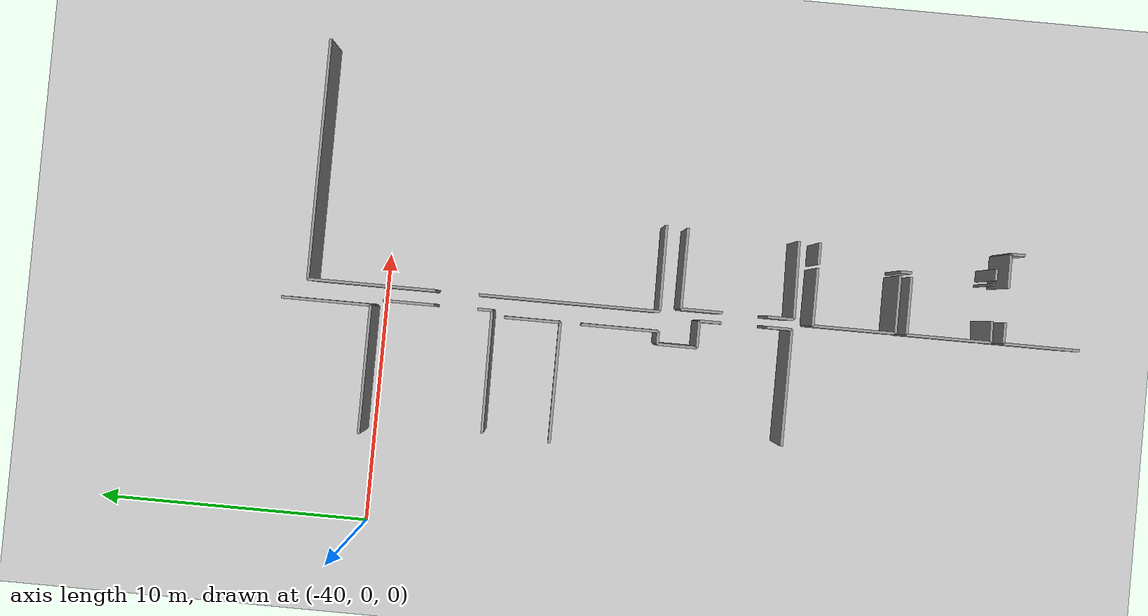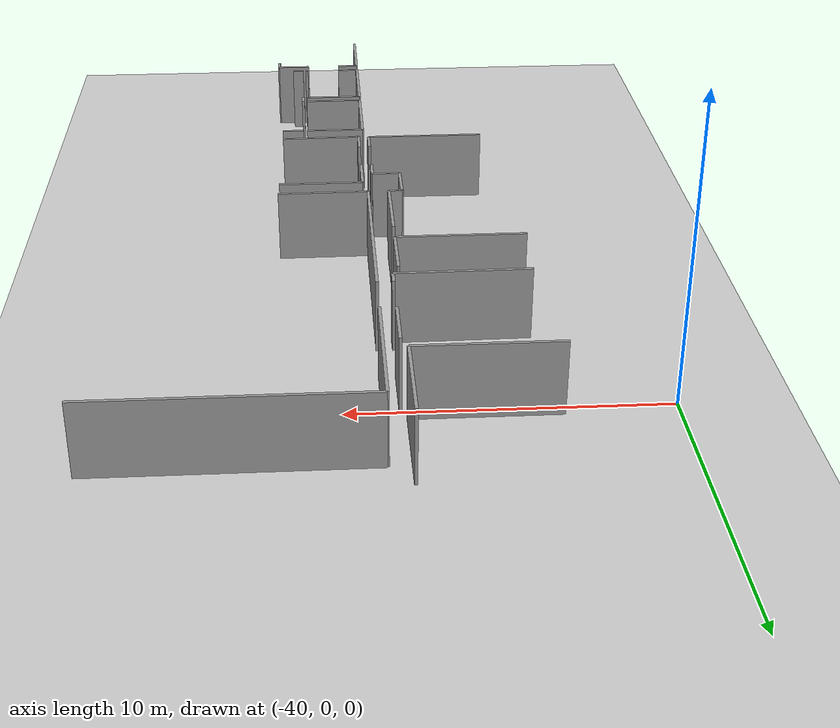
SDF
<sdf version="1.6">
 <world name="default">
  <model name="ground_plane">
   <static>1</static>
   <link name="link">
    <collision name="collision">
     <geometry><plane><normal>0 0 1</normal><size>100 100</size></plane></geometry>
     <surface><friction><ode><mu>100</mu><mu2>50</mu2></ode></friction></surface>
    </collision>
    <visual name="visual">
     <cast_shadows>0</cast_shadows>
     <geometry><plane><normal>0 0 1</normal><size>100 100</size></plane></geometry>
     <material>
      <script><uri>file://media/materials/scripts/gazebo.material</uri><name>Gazebo/Grey</name></script>
     </material>
    </visual>
   </link>
  </model>
  <model name="0510035342_A_40_1_101">
   <static>1</static>
   <link name="Wall_21">
    <collision name="Wall_21_Collision">
     <geometry><box><size>2.7773544651 0.1 2.5</size></box></geometry>
     <pose>1.38867723255 0 1.25 0 0 0</pose>
    </collision>
    <visual name="Wall_21_Visual">
     <pose>1.38867723255 0 1.25 0 0 0</pose>
     <geometry><box><size>2.7773544651 0.1 2.5</size></box></geometry>
     <material>
      <script><uri>file://media/materials/scripts/gazebo.material</uri><name>Gazebo/Grey</name></script>
      <ambient>1 1 1 1</ambient>
     </material>
    </visual>
    <pose>83.7661282129 -32.6178502489 0 0 0 -1.57079632679</pose>
   </link>
   <link name="Wall_22">
    <collision name="Wall_22_Collision">
     <geometry><box><size>0.454637813675 0.1 2.5</size></box></geometry>
     <pose>0.227318906837 0 1.25 0 0 0</pose>
    </collision>
    <visual name="Wall_22_Visual">
     <pose>0.227318906837 0 1.25 0 0 0</pose>
     <geometry><box><size>0.454637813675 0.1 2.5</size></box></geometry>
     <material>
      <script><uri>file://media/materials/scripts/gazebo.material</uri><name>Gazebo/Grey</name></script>
      <ambient>1 1 1 1</ambient>
     </material>
    </visual>
    <pose>83.7661282129 -35.395204714 0 0 0 3.14159265359</pose>
   </link>
   <link name="Wall_23">
    <collision name="Wall_23_Collision">
     <geometry><box><size>1.43401402012 0.1 2.5</size></box></geometry>
     <pose>0.717007010058 0 1.25 0 0 0</pose>
    </collision>
    <visual name="Wall_23_Visual">
     <pose>0.717007010058 0 1.25 0 0 0</pose>
     <geometry><box><size>1.43401402012 0.1 2.5</size></box></geometry>
     <material>
      <script><uri>file://media/materials/scripts/gazebo.material</uri><name>Gazebo/Grey</name></script>
      <ambient>1 1 1 1</ambient>
     </material>
    </visual>
    <pose>83.3114903993 -35.395204714 0 0 0 -1.57079632679</pose>
   </link>
   <link name="Wall_24">
    <collision name="Wall_24_Collision">
     <geometry><box><size>0.966676826171 0.1 2.5</size></box></geometry>
     <pose>0.483338413085 0 1.25 0 0 0</pose>
    </collision>
    <visual name="Wall_24_Visual">
     <pose>0.483338413085 0 1.25 0 0 0</pose>
     <geometry><box><size>0.966676826171 0.1 2.5</size></box></geometry>
     <material>
      <script><uri>file://media/materials/scripts/gazebo.material</uri><name>Gazebo/Grey</name></script>
      <ambient>1 1 1 1</ambient>
     </material>
    </visual>
    <pose>83.3114903993 -36.8292187341 0 0 0 0.0</pose>
   </link>
   <link name="Wall_25">
    <collision name="Wall_25_Collision">
     <geometry><box><size>0.798537031393 0.1 2.5</size></box></geometry>
     <pose>0.399268515696 0 1.25 0 0 0</pose>
    </collision>
    <visual name="Wall_25_Visual">
     <pose>0.399268515696 0 1.25 0 0 0</pose>
     <geometry><box><size>0.798537031393 0.1 2.5</size></box></geometry>
     <material>
      <script><uri>file://media/materials/scripts/gazebo.material</uri><name>Gazebo/Grey</name></script>
      <ambient>1 1 1 1</ambient>
     </material>
    </visual>
    <pose>84.2781672254 -36.8292187341 0 0 0 -1.57079632679</pose>
   </link>
   <link name="Wall_26">
    <collision name="Wall_26_Collision">
     <geometry><box><size>0.90038606116 0.1 2.5</size></box></geometry>
     <pose>0.45019303058 0 1.25 0 0 0</pose>
    </collision>
    <visual name="Wall_26_Visual">
     <pose>0.45019303058 0 1.25 0 0 0</pose>
     <geometry><box><size>0.90038606116 0.1 2.5</size></box></geometry>
     <material>
      <script><uri>file://media/materials/scripts/gazebo.material</uri><name>Gazebo/Grey</name></script>
      <ambient>1 1 1 1</ambient>
     </material>
    </visual>
    <pose>84.2781672254 -39.268769684 0 0 0 -1.57079632679</pose>
   </link>
   <link name="Wall_27">
    <collision name="Wall_27_Collision">
     <geometry><box><size>4.20832063395 0.1 2.5</size></box></geometry>
     <pose>2.10416031698 0 1.25 0 0 0</pose>
    </collision>
    <visual name="Wall_27_Visual">
     <pose>2.10416031698 0 1.25 0 0 0</pose>
     <geometry><box><size>4.20832063395 0.1 2.5</size></box></geometry>
     <material>
      <script><uri>file://media/materials/scripts/gazebo.material</uri><name>Gazebo/Grey</name></script>
      <ambient>1 1 1 1</ambient>
     </material>
    </visual>
    <pose>84.2781672254 -40.1691557452 0 0 0 3.14159265359</pose>
   </link>
   <link name="Wall_36">
    <collision name="Wall_36_Collision">
     <geometry><box><size>3.22970639033 0.1 2.5</size></box></geometry>
     <pose>1.61485319516 0 1.25 0 0 0</pose>
    </collision>
    <visual name="Wall_36_Visual">
     <pose>1.61485319516 0 1.25 0 0 0</pose>
     <geometry><box><size>3.22970639033 0.1 2.5</size></box></geometry>
     <material>
      <script><uri>file://media/materials/scripts/gazebo.material</uri><name>Gazebo/Grey</name></script>
      <ambient>1 1 1 1</ambient>
     </material>
    </visual>
    <pose>83.7554607335 -21.7555623286 0 0 0 -1.57079632679</pose>
   </link>
   <link name="Wall_37">
    <collision name="Wall_37_Collision">
     <geometry><box><size>4.64035355075 0.1 2.5</size></box></geometry>
     <pose>2.32017677537 0 1.25 0 0 0</pose>
    </collision>
    <visual name="Wall_37_Visual">
     <pose>2.32017677537 0 1.25 0 0 0</pose>
     <geometry><box><size>4.64035355075 0.1 2.5</size></box></geometry>
     <material>
      <script><uri>file://media/materials/scripts/gazebo.material</uri><name>Gazebo/Grey</name></script>
      <ambient>1 1 1 1</ambient>
     </material>
    </visual>
    <pose>83.7554607335 -24.9852687189 0 0 0 3.14159265359</pose>
   </link>
   <link name="Wall_40">
    <collision name="Wall_40_Collision">
     <geometry><box><size>2.03012293 0.1 2.5</size></box></geometry>
     <pose>1.015061465 0 1.25 0 0 0</pose>
    </collision>
    <visual name="Wall_40_Visual">
     <pose>1.015061465 0 1.25 0 0 0</pose>
     <geometry><box><size>2.03012293 0.1 2.5</size></box></geometry>
     <material>
      <script><uri>file://media/materials/scripts/gazebo.material</uri><name>Gazebo/Grey</name></script>
      <ambient>1 1 1 1</ambient>
     </material>
    </visual>
    <pose>83.7651122625 -29.8166209489 0 0 0 -1.57079632679</pose>
   </link>
   <link name="Wall_41">
    <collision name="Wall_41_Collision">
     <geometry><box><size>4.34877577974 0.1 2.5</size></box></geometry>
     <pose>2.17438788987 0 1.25 0 0 0</pose>
    </collision>
    <visual name="Wall_41_Visual">
     <pose>2.17438788987 0 1.25 0 0 0</pose>
     <geometry><box><size>4.34877577974 0.1 2.5</size></box></geometry>
     <material>
      <script><uri>file://media/materials/scripts/gazebo.material</uri><name>Gazebo/Grey</name></script>
      <ambient>1 1 1 1</ambient>
     </material>
    </visual>
    <pose>83.7651122625 -31.8467438789 0 0 0 3.14159265359</pose>
   </link>
   <link name="Wall_43">
    <collision name="Wall_43_Collision">
     <geometry><box><size>0.950421619425 0.1 2.5</size></box></geometry>
     <pose>0.475210809712 0 1.25 0 0 0</pose>
    </collision>
    <visual name="Wall_43_Visual">
     <pose>0.475210809712 0 1.25 0 0 0</pose>
     <geometry><box><size>0.950421619425 0.1 2.5</size></box></geometry>
     <material>
      <script><uri>file://media/materials/scripts/gazebo.material</uri><name>Gazebo/Grey</name></script>
      <ambient>1 1 1 1</ambient>
     </material>
    </visual>
    <pose>84.6502590674 -40.2141115514 0 0 0 1.57079632679</pose>
   </link>
   <link name="Wall_44">
    <collision name="Wall_44_Collision">
     <geometry><box><size>1.50309864879 0.1 2.5</size></box></geometry>
     <pose>0.751549324393 0 1.25 0 0 0</pose>
    </collision>
    <visual name="Wall_44_Visual">
     <pose>0.751549324393 0 1.25 0 0 0</pose>
     <geometry><box><size>1.50309864879 0.1 2.5</size></box></geometry>
     <material>
      <script><uri>file://media/materials/scripts/gazebo.material</uri><name>Gazebo/Grey</name></script>
      <ambient>1 1 1 1</ambient>
     </material>
    </visual>
    <pose>84.6502590674 -37.6323275424 0 0 0 1.57079632679</pose>
   </link>
   <link name="Wall_45">
    <collision name="Wall_45_Collision">
     <geometry><box><size>2.92517525145 0.1 2.5</size></box></geometry>
     <pose>1.46258762572 0 1.25 0 0 0</pose>
    </collision>
    <visual name="Wall_45_Visual">
     <pose>1.46258762572 0 1.25 0 0 0</pose>
     <geometry><box><size>2.92517525145 0.1 2.5</size></box></geometry>
     <material>
      <script><uri>file://media/materials/scripts/gazebo.material</uri><name>Gazebo/Grey</name></script>
      <ambient>1 1 1 1</ambient>
     </material>
    </visual>
    <pose>84.6502590674 -36.1292288936 0 0 0 0.0</pose>
   </link>
   <link name="Wall_58">
    <collision name="Wall_58_Collision">
     <geometry><box><size>2.82903033669 0.1 2.5</size></box></geometry>
     <pose>1.41451516834 0 1.25 0 0 0</pose>
    </collision>
    <visual name="Wall_58_Visual">
     <pose>1.41451516834 0 1.25 0 0 0</pose>
     <geometry><box><size>2.82903033669 0.1 2.5</size></box></geometry>
     <material>
      <script><uri>file://media/materials/scripts/gazebo.material</uri><name>Gazebo/Grey</name></script>
      <ambient>1 1 1 1</ambient>
     </material>
    </visual>
    <pose>87.4786650411 -40.1546784517 0 0 0 -3.12058281444</pose>
   </link>
   <link name="Wall_61">
    <collision name="Wall_61_Collision">
     <geometry><box><size>1.83912425074 0.1 2.5</size></box></geometry>
     <pose>0.919562125368 0 1.25 0 0 0</pose>
    </collision>
    <visual name="Wall_61_Visual">
     <pose>0.919562125368 0 1.25 0 0 0</pose>
     <geometry><box><size>1.83912425074 0.1 2.5</size></box></geometry>
     <material>
      <script><uri>file://media/materials/scripts/gazebo.material</uri><name>Gazebo/Grey</name></script>
      <ambient>1 1 1 1</ambient>
     </material>
    </visual>
    <pose>83.9655084832 -25.4244132886 0 0 0 -1.57079632679</pose>
   </link>
   <link name="Wall_62">
    <collision name="Wall_62_Collision">
     <geometry><box><size>0.527024281215 0.1 2.5</size></box></geometry>
     <pose>0.263512140608 0 1.25 0 0 0</pose>
    </collision>
    <visual name="Wall_62_Visual">
     <pose>0.263512140608 0 1.25 0 0 0</pose>
     <geometry><box><size>0.527024281215 0.1 2.5</size></box></geometry>
     <material>
      <script><uri>file://media/materials/scripts/gazebo.material</uri><name>Gazebo/Grey</name></script>
      <ambient>1 1 1 1</ambient>
     </material>
    </visual>
    <pose>83.9655084832 -28.8321649903 0 0 0 -1.57079632679</pose>
   </link>
   <link name="Wall_63">
    <collision name="Wall_63_Collision">
     <geometry><box><size>4.42169078626 0.1 2.5</size></box></geometry>
     <pose>2.21084539313 0 1.25 0 0 0</pose>
    </collision>
    <visual name="Wall_63_Visual">
     <pose>2.21084539313 0 1.25 0 0 0</pose>
     <geometry><box><size>4.42169078626 0.1 2.5</size></box></geometry>
     <material>
      <script><uri>file://media/materials/scripts/gazebo.material</uri><name>Gazebo/Grey</name></script>
      <ambient>1 1 1 1</ambient>
     </material>
    </visual>
    <pose>83.9655084832 -29.3591892716 0 0 0 -3.13044881344</pose>
   </link>
   <link name="Wall_64">
    <collision name="Wall_64_Collision">
     <geometry><box><size>6.53891090115 0.1 2.5</size></box></geometry>
     <pose>3.26945545057 0 1.25 0 0 0</pose>
    </collision>
    <visual name="Wall_64_Visual">
     <pose>3.26945545057 0 1.25 0 0 0</pose>
     <geometry><box><size>6.53891090115 0.1 2.5</size></box></geometry>
     <material>
      <script><uri>file://media/materials/scripts/gazebo.material</uri><name>Gazebo/Grey</name></script>
      <ambient>1 1 1 1</ambient>
     </material>
    </visual>
    <pose>84.4859290867 -35.3776795692 0 0 0 1.57079632679</pose>
   </link>
   <link name="Wall_65">
    <collision name="Wall_65_Collision">
     <geometry><box><size>4.62155846795 0.1 2.5</size></box></geometry>
     <pose>2.31077923397 0 1.25 0 0 0</pose>
    </collision>
    <visual name="Wall_65_Visual">
     <pose>2.31077923397 0 1.25 0 0 0</pose>
     <geometry><box><size>4.62155846795 0.1 2.5</size></box></geometry>
     <material>
      <script><uri>file://media/materials/scripts/gazebo.material</uri><name>Gazebo/Grey</name></script>
      <ambient>1 1 1 1</ambient>
     </material>
    </visual>
    <pose>84.4859290867 -27.2630295642 0 0 0 1.57079632679</pose>
   </link>
   <link name="Wall_66">
    <collision name="Wall_66_Collision">
     <geometry><box><size>8.71736259271 0.1 2.5</size></box></geometry>
     <pose>4.35868129635 0 1.25 0 0 0</pose>
    </collision>
    <visual name="Wall_66_Visual">
     <pose>4.35868129635 0 1.25 0 0 0</pose>
     <geometry><box><size>8.71736259271 0.1 2.5</size></box></geometry>
     <material>
      <script><uri>file://media/materials/scripts/gazebo.material</uri><name>Gazebo/Grey</name></script>
      <ambient>1 1 1 1</ambient>
     </material>
    </visual>
    <pose>84.4859290867 -22.6414710962 0 0 0 0.0</pose>
   </link>
   <link name="Wall_69">
    <collision name="Wall_69_Collision">
     <geometry><box><size>3.12723659161 0.1 2.5</size></box></geometry>
     <pose>1.56361829581 0 1.25 0 0 0</pose>
    </collision>
    <visual name="Wall_69_Visual">
     <pose>1.56361829581 0 1.25 0 0 0</pose>
     <geometry><box><size>3.12723659161 0.1 2.5</size></box></geometry>
     <material>
      <script><uri>file://media/materials/scripts/gazebo.material</uri><name>Gazebo/Grey</name></script>
      <ambient>1 1 1 1</ambient>
     </material>
    </visual>
    <pose>87.6130244844 -35.3479630194 0 0 0 -3.13209001565</pose>
   </link>
   <link name="Wall_88">
    <collision name="Wall_88_Collision">
     <geometry><box><size>0.41730163568 0.1 2.5</size></box></geometry>
     <pose>0.20865081784 0 1.25 0 0 0</pose>
    </collision>
    <visual name="Wall_88_Visual">
     <pose>0.20865081784 0 1.25 0 0 0</pose>
     <geometry><box><size>0.41730163568 0.1 2.5</size></box></geometry>
     <material>
      <script><uri>file://media/materials/scripts/gazebo.material</uri><name>Gazebo/Grey</name></script>
      <ambient>1 1 1 1</ambient>
     </material>
    </visual>
    <pose>87.1289241085 -47.3344000813 0 0 0 3.14159265359</pose>
   </link>
   <link name="Wall_89">
    <collision name="Wall_89_Collision">
     <geometry><box><size>0.416793660469 0.1 2.5</size></box></geometry>
     <pose>0.208396830235 0 1.25 0 0 0</pose>
    </collision>
    <visual name="Wall_89_Visual">
     <pose>0.208396830235 0 1.25 0 0 0</pose>
     <geometry><box><size>0.416793660469 0.1 2.5</size></box></geometry>
     <material>
      <script><uri>file://media/materials/scripts/gazebo.material</uri><name>Gazebo/Grey</name></script>
      <ambient>1 1 1 1</ambient>
     </material>
    </visual>
    <pose>86.7116224728 -44.3104236513 0 0 0 1.57079632679</pose>
   </link>
   <link name="Wall_90">
    <collision name="Wall_90_Collision">
     <geometry><box><size>0.775170171696 0.1 2.5</size></box></geometry>
     <pose>0.387585085848 0 1.25 0 0 0</pose>
    </collision>
    <visual name="Wall_90_Visual">
     <pose>0.387585085848 0 1.25 0 0 0</pose>
     <geometry><box><size>0.775170171696 0.1 2.5</size></box></geometry>
     <material>
      <script><uri>file://media/materials/scripts/gazebo.material</uri><name>Gazebo/Grey</name></script>
      <ambient>1 1 1 1</ambient>
     </material>
    </visual>
    <pose>86.7116224728 -40.92172102 0 0 0 0.0</pose>
   </link>
   <link name="Wall_124">
    <collision name="Wall_124_Collision">
     <geometry><box><size>2.99146601646 0.1 2.5</size></box></geometry>
     <pose>1.49573300823 0 1.25 0 0 0</pose>
    </collision>
    <visual name="Wall_124_Visual">
     <pose>1.49573300823 0 1.25 0 0 0</pose>
     <geometry><box><size>2.99146601646 0.1 2.5</size></box></geometry>
     <material>
      <script><uri>file://media/materials/scripts/gazebo.material</uri><name>Gazebo/Grey</name></script>
      <ambient>1 1 1 1</ambient>
     </material>
    </visual>
    <pose>84.4813573098 -43.901249619 0 0 0 1.57079632679</pose>
   </link>
   <link name="Wall_125">
    <collision name="Wall_125_Collision">
     <geometry><box><size>2.08803210403 0.1 2.5</size></box></geometry>
     <pose>1.04401605202 0 1.25 0 0 0</pose>
    </collision>
    <visual name="Wall_125_Visual">
     <pose>1.04401605202 0 1.25 0 0 0</pose>
     <geometry><box><size>2.08803210403 0.1 2.5</size></box></geometry>
     <material>
      <script><uri>file://media/materials/scripts/gazebo.material</uri><name>Gazebo/Grey</name></script>
      <ambient>1 1 1 1</ambient>
     </material>
    </visual>
    <pose>84.4813573098 -40.9097836026 0 0 0 0.0</pose>
   </link>
   <link name="Wall_126">
    <collision name="Wall_126_Collision">
     <geometry><box><size>2.08803513174 0.1 2.5</size></box></geometry>
     <pose>1.04401756587 0 1.25 0 0 0</pose>
    </collision>
    <visual name="Wall_126_Visual">
     <pose>1.04401756587 0 1.25 0 0 0</pose>
     <geometry><box><size>2.08803513174 0.1 2.5</size></box></geometry>
     <material>
      <script><uri>file://media/materials/scripts/gazebo.material</uri><name>Gazebo/Grey</name></script>
      <ambient>1 1 1 1</ambient>
     </material>
    </visual>
    <pose>86.5693894138 -43.8976937925 0 0 0 -3.13988969939</pose>
   </link>
   <link name="Wall_127">
    <collision name="Wall_127_Collision">
     <geometry><box><size>3.05547089302 0.1 2.5</size></box></geometry>
     <pose>1.52773544651 0 1.25 0 0 0</pose>
    </collision>
    <visual name="Wall_127_Visual">
     <pose>1.52773544651 0 1.25 0 0 0</pose>
     <geometry><box><size>3.05547089302 0.1 2.5</size></box></geometry>
     <material>
      <script><uri>file://media/materials/scripts/gazebo.material</uri><name>Gazebo/Grey</name></script>
      <ambient>1 1 1 1</ambient>
     </material>
    </visual>
    <pose>84.4717057808 -47.3570049782 0 0 0 1.57079632679</pose>
   </link>
   <link name="Wall_128">
    <collision name="Wall_128_Collision">
     <geometry><box><size>2.0910799553 0.1 2.5</size></box></geometry>
     <pose>1.04553997765 0 1.25 0 0 0</pose>
    </collision>
    <visual name="Wall_128_Visual">
     <pose>1.04553997765 0 1.25 0 0 0</pose>
     <geometry><box><size>2.0910799553 0.1 2.5</size></box></geometry>
     <material>
      <script><uri>file://media/materials/scripts/gazebo.material</uri><name>Gazebo/Grey</name></script>
      <ambient>1 1 1 1</ambient>
     </material>
    </visual>
    <pose>84.4717057808 -44.3015340851 0 0 0 0.0</pose>
   </link>
   <link name="Wall_129">
    <collision name="Wall_129_Collision">
     <geometry><box><size>0.0581631616377 0.1 2.5</size></box></geometry>
     <pose>0.0290815808189 0 1.25 0 0 0</pose>
    </collision>
    <visual name="Wall_129_Visual">
     <pose>0.0290815808189 0 1.25 0 0 0</pose>
     <geometry><box><size>0.0581631616377 0.1 2.5</size></box></geometry>
     <material>
      <script><uri>file://media/materials/scripts/gazebo.material</uri><name>Gazebo/Grey</name></script>
      <ambient>1 1 1 1</ambient>
     </material>
    </visual>
    <pose>86.5627857361 -47.2569338616 0 0 0 -1.57079632679</pose>
   </link>
   <link name="Wall_130">
    <collision name="Wall_130_Collision">
     <geometry><box><size>0.774526863398 0.1 2.5</size></box></geometry>
     <pose>0.387263431699 0 1.25 0 0 0</pose>
    </collision>
    <visual name="Wall_130_Visual">
     <pose>0.387263431699 0 1.25 0 0 0</pose>
     <geometry><box><size>0.774526863398 0.1 2.5</size></box></geometry>
     <material>
      <script><uri>file://media/materials/scripts/gazebo.material</uri><name>Gazebo/Grey</name></script>
      <ambient>1 1 1 1</ambient>
     </material>
    </visual>
    <pose>85.2450980392 -47.3150970233 0 0 0 -3.08745840398</pose>
   </link>
   <link name="Wall_136">
    <collision name="Wall_136_Collision">
     <geometry><box><size>2.73417657218 0.1 2.5</size></box></geometry>
     <pose>1.36708828609 0 1.25 0 0 0</pose>
    </collision>
    <visual name="Wall_136_Visual">
     <pose>1.36708828609 0 1.25 0 0 0</pose>
     <geometry><box><size>2.73417657218 0.1 2.5</size></box></geometry>
     <material>
      <script><uri>file://media/materials/scripts/gazebo.material</uri><name>Gazebo/Grey</name></script>
      <ambient>1 1 1 1</ambient>
     </material>
    </visual>
    <pose>84.4717057808 -50.5407396119 0 0 0 1.57079632679</pose>
   </link>
   <link name="Wall_137">
    <collision name="Wall_137_Collision">
     <geometry><box><size>0.768566493955 0.1 2.5</size></box></geometry>
     <pose>0.384283246978 0 1.25 0 0 0</pose>
    </collision>
    <visual name="Wall_137_Visual">
     <pose>0.384283246978 0 1.25 0 0 0</pose>
     <geometry><box><size>0.768566493955 0.1 2.5</size></box></geometry>
     <material>
      <script><uri>file://media/materials/scripts/gazebo.material</uri><name>Gazebo/Grey</name></script>
      <ambient>1 1 1 1</ambient>
     </material>
    </visual>
    <pose>84.4717057808 -47.8065630397 0 0 0 0.0</pose>
   </link>
   <link name="Wall_138">
    <collision name="Wall_138_Collision">
     <geometry><box><size>1.23183988621 0.1 2.5</size></box></geometry>
     <pose>0.615919943107 0 1.25 0 0 0</pose>
    </collision>
    <visual name="Wall_138_Visual">
     <pose>0.615919943107 0 1.25 0 0 0</pose>
     <geometry><box><size>1.23183988621 0.1 2.5</size></box></geometry>
     <material>
      <script><uri>file://media/materials/scripts/gazebo.material</uri><name>Gazebo/Grey</name></script>
      <ambient>1 1 1 1</ambient>
     </material>
    </visual>
    <pose>86.4766839378 -47.8065630397 0 0 0 0.0</pose>
   </link>
   <link name="Wall_139">
    <collision name="Wall_139_Collision">
     <geometry><box><size>0.50518134715 0.1 2.5</size></box></geometry>
     <pose>0.252590673575 0 1.25 0 0 0</pose>
    </collision>
    <visual name="Wall_139_Visual">
     <pose>0.252590673575 0 1.25 0 0 0</pose>
     <geometry><box><size>0.50518134715 0.1 2.5</size></box></geometry>
     <material>
      <script><uri>file://media/materials/scripts/gazebo.material</uri><name>Gazebo/Grey</name></script>
      <ambient>1 1 1 1</ambient>
     </material>
    </visual>
    <pose>87.708523824 -47.8065630397 0 0 0 -1.57079632679</pose>
   </link>
   <pose>-115.7 25.291537133 0 0 0 0</pose>
  </model>
 </world>
</sdf>
